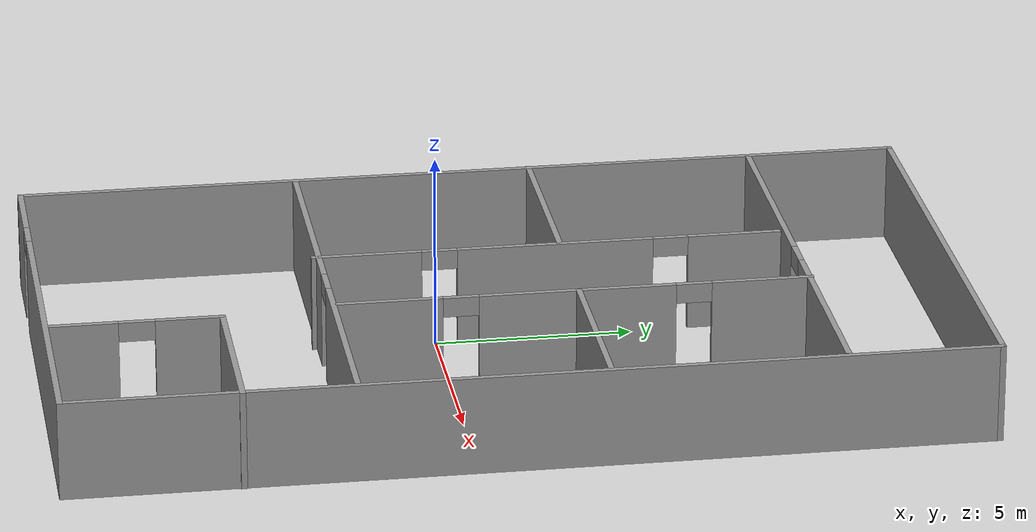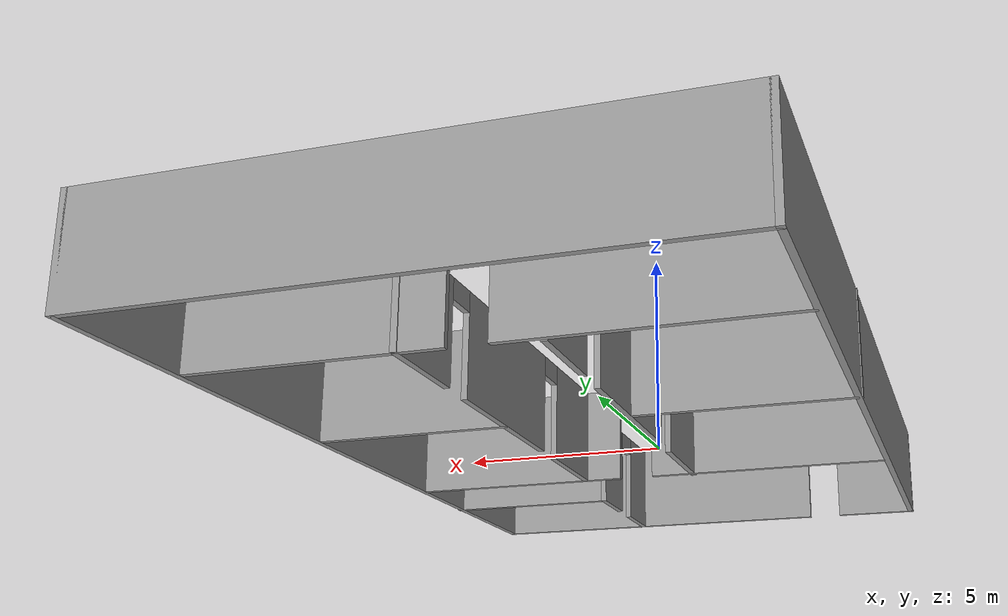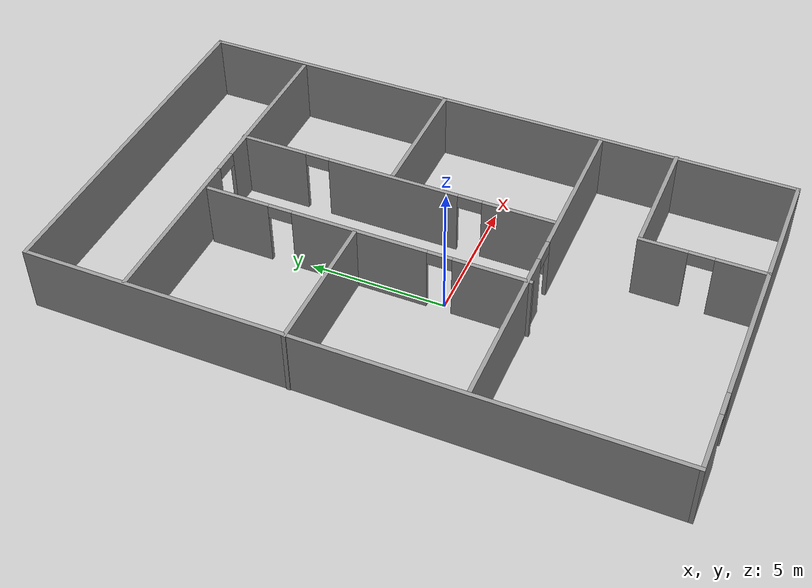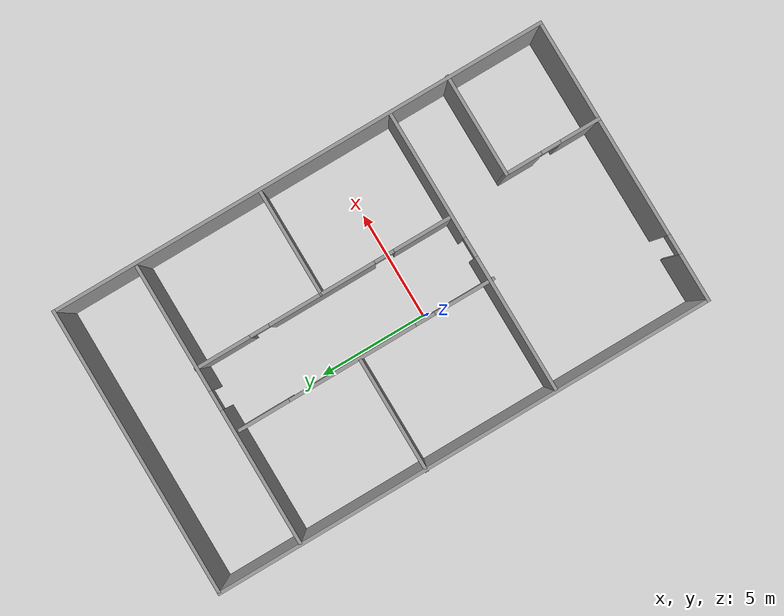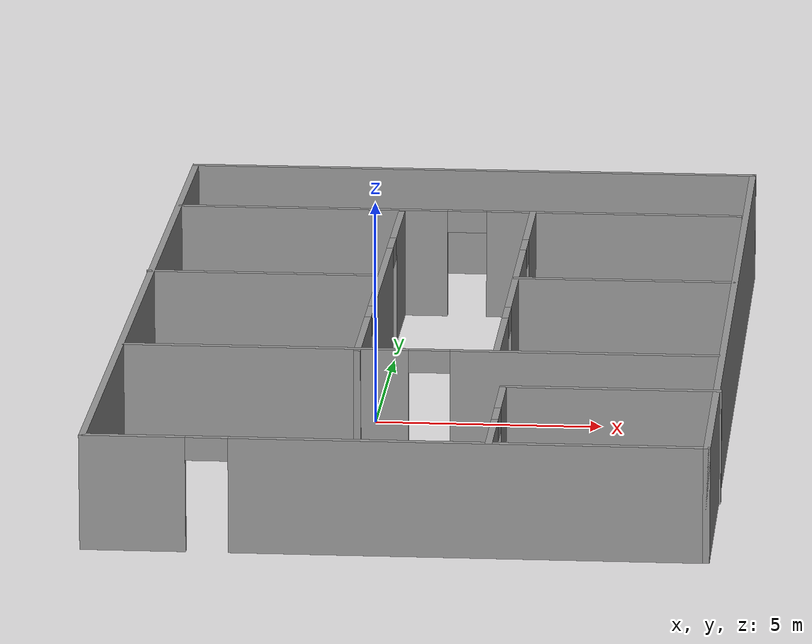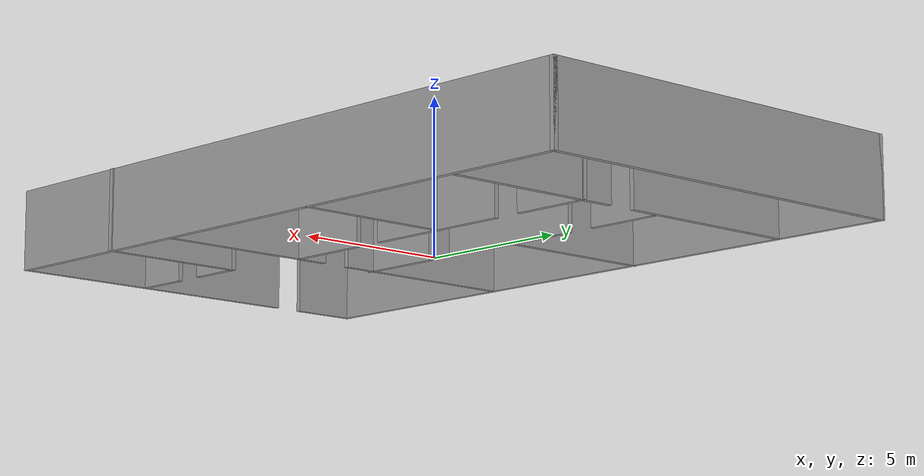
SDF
<?xml version='1.0'?>
<sdf version='1.7'>
  <model name='planning_house'>
    <pose>1.23002 1.36926 0 0 -0 0</pose>
    <link name='Wall_11'>
      <collision name='Wall_11_Collision'>
        <geometry>
          <box>
            <size>23 0.15 2.5</size>
          </box>
        </geometry>
        <pose>0 0 1.25 0 -0 0</pose>
      </collision>
      <visual name='Wall_11_Visual'>
        <pose>0 0 1.25 0 -0 0</pose>
        <geometry>
          <box>
            <size>23 0.15 2.5</size>
          </box>
        </geometry>
        <material>
          <script>
            <uri>file://media/materials/scripts/gazebo.material</uri>
            <name>Gazebo/Grey</name>
          </script>
          <ambient>1 1 1 1</ambient>
        </material>
        <meta>
          <layer>0</layer>
        </meta>
      </visual>
      <pose>-6.55488 -0 0 0 -0 1.5708</pose>
    </link>
    <link name='Wall_12'>
      <collision name='Wall_12_Collision'>
        <geometry>
          <box>
            <size>13.25 0.15 2.5</size>
          </box>
        </geometry>
        <pose>0 0 1.25 0 -0 0</pose>
      </collision>
      <visual name='Wall_12_Visual'>
        <pose>0 0 1.25 0 -0 0</pose>
        <geometry>
          <box>
            <size>13.25 0.15 2.5</size>
          </box>
        </geometry>
        <material>
          <script>
            <uri>file://media/materials/scripts/gazebo.material</uri>
            <name>Gazebo/Grey</name>
          </script>
          <ambient>1 1 1 1</ambient>
        </material>
        <meta>
          <layer>0</layer>
        </meta>
      </visual>
      <pose>-0.004875 11.425 0 0 -0 0</pose>
    </link>
    <link name='Wall_14'>
      <pose>-0.012533 -4.30199 0 0 -0 0</pose>
      <visual name='Wall_14_Visual_0'>
        <pose>-3.37602 0 1.25 0 -0 0</pose>
        <geometry>
          <box>
            <size>6.24796 0.15 2.5</size>
          </box>
        </geometry>
        <material>
          <script>
            <uri>file://media/materials/scripts/gazebo.material</uri>
            <name>Gazebo/Grey</name>
          </script>
          <ambient>1 1 1 1</ambient>
        </material>
        <meta>
          <layer>0</layer>
        </meta>
      </visual>
      <collision name='Wall_14_Collision_0'>
        <geometry>
          <box>
            <size>6.24796 0.15 2.5</size>
          </box>
        </geometry>
        <pose>-3.37602 0 1.25 0 -0 0</pose>
      </collision>
      <visual name='Wall_14_Visual_1'>
        <pose>3.57398 0 1.25 0 -0 0</pose>
        <geometry>
          <box>
            <size>5.85204 0.15 2.5</size>
          </box>
        </geometry>
        <material>
          <script>
            <uri>file://media/materials/scripts/gazebo.material</uri>
            <name>Gazebo/Grey</name>
          </script>
          <ambient>1 1 1 1</ambient>
        </material>
        <meta>
          <layer>0</layer>
        </meta>
      </visual>
      <collision name='Wall_14_Collision_1'>
        <geometry>
          <box>
            <size>5.85204 0.15 2.5</size>
          </box>
        </geometry>
        <pose>3.57398 0 1.25 0 -0 0</pose>
      </collision>
      <visual name='Wall_14_Visual_2'>
        <pose>0.197958 0 2.25 0 -0 0</pose>
        <geometry>
          <box>
            <size>0.9 0.15 0.5</size>
          </box>
        </geometry>
        <material>
          <script>
            <uri>file://media/materials/scripts/gazebo.material</uri>
            <name>Gazebo/Grey</name>
          </script>
          <ambient>1 1 1 1</ambient>
        </material>
        <meta>
          <layer>0</layer>
        </meta>
      </visual>
      <collision name='Wall_14_Collision_2'>
        <geometry>
          <box>
            <size>0.9 0.15 0.5</size>
          </box>
        </geometry>
        <pose>0.197958 0 2.25 0 -0 0</pose>
      </collision>
    </link>
    <link name='Wall_17'>
      <pose>1.98264 -9.24908 0 0 -0 1.5708</pose>
      <visual name='Wall_17_Visual_0'>
        <pose>-1.31875 0 1.25 0 -0 0</pose>
        <geometry>
          <box>
            <size>1.8625 0.15 2.5</size>
          </box>
        </geometry>
        <material>
          <script>
            <uri>file://media/materials/scripts/gazebo.material</uri>
            <name>Gazebo/Grey</name>
          </script>
          <ambient>1 1 1 1</ambient>
        </material>
        <meta>
          <layer>0</layer>
        </meta>
      </visual>
      <collision name='Wall_17_Collision_0'>
        <geometry>
          <box>
            <size>1.8625 0.15 2.5</size>
          </box>
        </geometry>
        <pose>-1.31875 0 1.25 0 -0 0</pose>
      </collision>
      <visual name='Wall_17_Visual_1'>
        <pose>1.38125 0 1.25 0 -0 0</pose>
        <geometry>
          <box>
            <size>1.7375 0.15 2.5</size>
          </box>
        </geometry>
        <material>
          <script>
            <uri>file://media/materials/scripts/gazebo.material</uri>
            <name>Gazebo/Grey</name>
          </script>
          <ambient>1 1 1 1</ambient>
        </material>
        <meta>
          <layer>0</layer>
        </meta>
      </visual>
      <collision name='Wall_17_Collision_1'>
        <geometry>
          <box>
            <size>1.7375 0.15 2.5</size>
          </box>
        </geometry>
        <pose>1.38125 0 1.25 0 -0 0</pose>
      </collision>
      <visual name='Wall_17_Visual_2'>
        <pose>0.062501 0 2.25 0 -0 0</pose>
        <geometry>
          <box>
            <size>0.9 0.15 0.5</size>
          </box>
        </geometry>
        <material>
          <script>
            <uri>file://media/materials/scripts/gazebo.material</uri>
            <name>Gazebo/Grey</name>
          </script>
          <ambient>1 1 1 1</ambient>
        </material>
        <meta>
          <layer>0</layer>
        </meta>
      </visual>
      <collision name='Wall_17_Collision_2'>
        <geometry>
          <box>
            <size>0.9 0.15 0.5</size>
          </box>
        </geometry>
        <pose>0.062501 0 2.25 0 -0 0</pose>
      </collision>
    </link>
    <link name='Wall_18'>
      <collision name='Wall_18_Collision'>
        <geometry>
          <box>
            <size>4.75 0.15 2.5</size>
          </box>
        </geometry>
        <pose>0 0 1.25 0 -0 0</pose>
      </collision>
      <visual name='Wall_18_Visual'>
        <pose>0 0 1.25 0 -0 0</pose>
        <geometry>
          <box>
            <size>4.75 0.15 2.5</size>
          </box>
        </geometry>
        <material>
          <script>
            <uri>file://media/materials/scripts/gazebo.material</uri>
            <name>Gazebo/Grey</name>
          </script>
          <ambient>1 1 1 1</ambient>
        </material>
        <meta>
          <layer>0</layer>
        </meta>
      </visual>
      <pose>4.28264 -7.07409 0 0 -0 0</pose>
    </link>
    <link name='Wall_20'>
      <pose>-0.05346 7.64505 0 0 -0 0</pose>
      <visual name='Wall_20_Visual_0'>
        <pose>-3.38632 0 1.25 0 -0 0</pose>
        <geometry>
          <box>
            <size>6.22736 0.15 2.5</size>
          </box>
        </geometry>
        <material>
          <script>
            <uri>file://media/materials/scripts/gazebo.material</uri>
            <name>Gazebo/Grey</name>
          </script>
          <ambient>1 1 1 1</ambient>
        </material>
        <meta>
          <layer>0</layer>
        </meta>
      </visual>
      <collision name='Wall_20_Collision_0'>
        <geometry>
          <box>
            <size>6.22736 0.15 2.5</size>
          </box>
        </geometry>
        <pose>-3.38632 0 1.25 0 -0 0</pose>
      </collision>
      <visual name='Wall_20_Visual_1'>
        <pose>3.56368 0 1.25 0 -0 0</pose>
        <geometry>
          <box>
            <size>5.87264 0.15 2.5</size>
          </box>
        </geometry>
        <material>
          <script>
            <uri>file://media/materials/scripts/gazebo.material</uri>
            <name>Gazebo/Grey</name>
          </script>
          <ambient>1 1 1 1</ambient>
        </material>
        <meta>
          <layer>0</layer>
        </meta>
      </visual>
      <collision name='Wall_20_Collision_1'>
        <geometry>
          <box>
            <size>5.87264 0.15 2.5</size>
          </box>
        </geometry>
        <pose>3.56368 0 1.25 0 -0 0</pose>
      </collision>
      <visual name='Wall_20_Visual_2'>
        <pose>0.177357 0 2.25 0 -0 0</pose>
        <geometry>
          <box>
            <size>0.9 0.15 0.5</size>
          </box>
        </geometry>
        <material>
          <script>
            <uri>file://media/materials/scripts/gazebo.material</uri>
            <name>Gazebo/Grey</name>
          </script>
          <ambient>1 1 1 1</ambient>
        </material>
        <meta>
          <layer>0</layer>
        </meta>
      </visual>
      <collision name='Wall_20_Collision_2'>
        <geometry>
          <box>
            <size>0.9 0.15 0.5</size>
          </box>
        </geometry>
        <pose>0.177357 0 2.25 0 -0 0</pose>
      </collision>
    </link>
    <link name='Wall_22'>
      <pose>-1.37746 1.50054 0 0 -0 -1.5708</pose>
      <visual name='Wall_22_Visual_0'>
        <pose>-4.80332 0 1.25 0 -0 0</pose>
        <geometry>
          <box>
            <size>2.39335 0.15 2.5</size>
          </box>
        </geometry>
        <material>
          <script>
            <uri>file://media/materials/scripts/gazebo.material</uri>
            <name>Gazebo/Grey</name>
          </script>
          <ambient>1 1 1 1</ambient>
        </material>
        <meta>
          <layer>0</layer>
        </meta>
      </visual>
      <collision name='Wall_22_Collision_0'>
        <geometry>
          <box>
            <size>2.39335 0.15 2.5</size>
          </box>
        </geometry>
        <pose>-4.80332 0 1.25 0 -0 0</pose>
      </collision>
      <visual name='Wall_22_Visual_1'>
        <pose>-0.20331 0 1.25 0 -0 0</pose>
        <geometry>
          <box>
            <size>5.00668 0.15 2.5</size>
          </box>
        </geometry>
        <material>
          <script>
            <uri>file://media/materials/scripts/gazebo.material</uri>
            <name>Gazebo/Grey</name>
          </script>
          <ambient>1 1 1 1</ambient>
        </material>
        <meta>
          <layer>0</layer>
        </meta>
      </visual>
      <collision name='Wall_22_Collision_1'>
        <geometry>
          <box>
            <size>5.00668 0.15 2.5</size>
          </box>
        </geometry>
        <pose>-0.20331 0 1.25 0 -0 0</pose>
      </collision>
      <visual name='Wall_22_Visual_2'>
        <pose>4.60001 0 1.25 0 -0 0</pose>
        <geometry>
          <box>
            <size>2.79997 0.15 2.5</size>
          </box>
        </geometry>
        <material>
          <script>
            <uri>file://media/materials/scripts/gazebo.material</uri>
            <name>Gazebo/Grey</name>
          </script>
          <ambient>1 1 1 1</ambient>
        </material>
        <meta>
          <layer>0</layer>
        </meta>
      </visual>
      <collision name='Wall_22_Collision_2'>
        <geometry>
          <box>
            <size>2.79997 0.15 2.5</size>
          </box>
        </geometry>
        <pose>4.60001 0 1.25 0 -0 0</pose>
      </collision>
      <visual name='Wall_22_Visual_3'>
        <pose>-3.15665 0 2.25 0 -0 0</pose>
        <geometry>
          <box>
            <size>0.9 0.15 0.5</size>
          </box>
        </geometry>
        <material>
          <script>
            <uri>file://media/materials/scripts/gazebo.material</uri>
            <name>Gazebo/Grey</name>
          </script>
          <ambient>1 1 1 1</ambient>
        </material>
        <meta>
          <layer>0</layer>
        </meta>
      </visual>
      <collision name='Wall_22_Collision_3'>
        <geometry>
          <box>
            <size>0.9 0.15 0.5</size>
          </box>
        </geometry>
        <pose>-3.15665 0 2.25 0 -0 0</pose>
      </collision>
      <visual name='Wall_22_Visual_4'>
        <pose>2.75003 0 2.25 0 -0 0</pose>
        <geometry>
          <box>
            <size>0.9 0.15 0.5</size>
          </box>
        </geometry>
        <material>
          <script>
            <uri>file://media/materials/scripts/gazebo.material</uri>
            <name>Gazebo/Grey</name>
          </script>
          <ambient>1 1 1 1</ambient>
        </material>
        <meta>
          <layer>0</layer>
        </meta>
      </visual>
      <collision name='Wall_22_Collision_4'>
        <geometry>
          <box>
            <size>0.9 0.15 0.5</size>
          </box>
        </geometry>
        <pose>2.75003 0 2.25 0 -0 0</pose>
      </collision>
    </link>
    <link name='Wall_24'>
      <pose>1.64125 1.74823 0 0 -0 1.5708</pose>
      <visual name='Wall_24_Visual_0'>
        <pose>-4.66233 0 1.25 0 -0 0</pose>
        <geometry>
          <box>
            <size>2.67534 0.15 2.5</size>
          </box>
        </geometry>
        <material>
          <script>
            <uri>file://media/materials/scripts/gazebo.material</uri>
            <name>Gazebo/Grey</name>
          </script>
          <ambient>1 1 1 1</ambient>
        </material>
        <meta>
          <layer>0</layer>
        </meta>
      </visual>
      <collision name='Wall_24_Collision_0'>
        <geometry>
          <box>
            <size>2.67534 0.15 2.5</size>
          </box>
        </geometry>
        <pose>-4.66233 0 1.25 0 -0 0</pose>
      </collision>
      <visual name='Wall_24_Visual_1'>
        <pose>0.04791 0 1.25 0 -0 0</pose>
        <geometry>
          <box>
            <size>4.94515 0.15 2.5</size>
          </box>
        </geometry>
        <material>
          <script>
            <uri>file://media/materials/scripts/gazebo.material</uri>
            <name>Gazebo/Grey</name>
          </script>
          <ambient>1 1 1 1</ambient>
        </material>
        <meta>
          <layer>0</layer>
        </meta>
      </visual>
      <collision name='Wall_24_Collision_1'>
        <geometry>
          <box>
            <size>4.94515 0.15 2.5</size>
          </box>
        </geometry>
        <pose>0.04791 0 1.25 0 -0 0</pose>
      </collision>
      <visual name='Wall_24_Visual_2'>
        <pose>4.71024 0 1.25 0 -0 0</pose>
        <geometry>
          <box>
            <size>2.57952 0.15 2.5</size>
          </box>
        </geometry>
        <material>
          <script>
            <uri>file://media/materials/scripts/gazebo.material</uri>
            <name>Gazebo/Grey</name>
          </script>
          <ambient>1 1 1 1</ambient>
        </material>
        <meta>
          <layer>0</layer>
        </meta>
      </visual>
      <collision name='Wall_24_Collision_2'>
        <geometry>
          <box>
            <size>2.57952 0.15 2.5</size>
          </box>
        </geometry>
        <pose>4.71024 0 1.25 0 -0 0</pose>
      </collision>
      <visual name='Wall_24_Visual_3'>
        <pose>-2.87466 0 2.25 0 -0 0</pose>
        <geometry>
          <box>
            <size>0.9 0.15 0.5</size>
          </box>
        </geometry>
        <material>
          <script>
            <uri>file://media/materials/scripts/gazebo.material</uri>
            <name>Gazebo/Grey</name>
          </script>
          <ambient>1 1 1 1</ambient>
        </material>
        <meta>
          <layer>0</layer>
        </meta>
      </visual>
      <collision name='Wall_24_Collision_3'>
        <geometry>
          <box>
            <size>0.9 0.15 0.5</size>
          </box>
        </geometry>
        <pose>-2.87466 0 2.25 0 -0 0</pose>
      </collision>
      <visual name='Wall_24_Visual_4'>
        <pose>2.97048 0 2.25 0 -0 0</pose>
        <geometry>
          <box>
            <size>0.9 0.15 0.5</size>
          </box>
        </geometry>
        <material>
          <script>
            <uri>file://media/materials/scripts/gazebo.material</uri>
            <name>Gazebo/Grey</name>
          </script>
          <ambient>1 1 1 1</ambient>
        </material>
        <meta>
          <layer>0</layer>
        </meta>
      </visual>
      <collision name='Wall_24_Collision_4'>
        <geometry>
          <box>
            <size>0.9 0.15 0.5</size>
          </box>
        </geometry>
        <pose>2.97048 0 2.25 0 -0 0</pose>
      </collision>
    </link>
    <link name='Wall_27'>
      <collision name='Wall_27_Collision'>
        <geometry>
          <box>
            <size>5.25 0.15 2.5</size>
          </box>
        </geometry>
        <pose>0 0 1.25 0 -0 0</pose>
      </collision>
      <visual name='Wall_27_Visual'>
        <pose>0 0 1.25 0 -0 0</pose>
        <geometry>
          <box>
            <size>5.25 0.15 2.5</size>
          </box>
        </geometry>
        <material>
          <script>
            <uri>file://media/materials/scripts/gazebo.material</uri>
            <name>Gazebo/Grey</name>
          </script>
          <ambient>1 1 1 1</ambient>
        </material>
        <meta>
          <layer>0</layer>
        </meta>
      </visual>
      <pose>-4.03264 1.82691 0 0 -0 0</pose>
    </link>
    <link name='Wall_29'>
      <collision name='Wall_29_Collision'>
        <geometry>
          <box>
            <size>5 0.15 2.5</size>
          </box>
        </geometry>
        <pose>0 0 1.25 0 -0 0</pose>
      </collision>
      <visual name='Wall_29_Visual'>
        <pose>0 0 1.25 0 -0 0</pose>
        <geometry>
          <box>
            <size>5 0.15 2.5</size>
          </box>
        </geometry>
        <material>
          <script>
            <uri>file://media/materials/scripts/gazebo.material</uri>
            <name>Gazebo/Grey</name>
          </script>
          <ambient>1 1 1 1</ambient>
        </material>
        <meta>
          <layer>0</layer>
        </meta>
      </visual>
      <pose>4.08709 1.82691 0 0 -0 0</pose>
    </link>
    <link name='Wall_7'>
      <pose>-0.004875 -11.425 0 0 -0 0</pose>
      <visual name='Wall_7_Visual_0'>
        <pose>-5.50353 0 1.25 0 -0 0</pose>
        <geometry>
          <box>
            <size>2.24293 0.15 2.5</size>
          </box>
        </geometry>
        <material>
          <script>
            <uri>file://media/materials/scripts/gazebo.material</uri>
            <name>Gazebo/Grey</name>
          </script>
          <ambient>1 1 1 1</ambient>
        </material>
        <meta>
          <layer>0</layer>
        </meta>
      </visual>
      <collision name='Wall_7_Collision_0'>
        <geometry>
          <box>
            <size>2.24293 0.15 2.5</size>
          </box>
        </geometry>
        <pose>-5.50353 0 1.25 0 -0 0</pose>
      </collision>
      <visual name='Wall_7_Visual_1'>
        <pose>1.57147 0 1.25 0 -0 0</pose>
        <geometry>
          <box>
            <size>10.1071 0.15 2.5</size>
          </box>
        </geometry>
        <material>
          <script>
            <uri>file://media/materials/scripts/gazebo.material</uri>
            <name>Gazebo/Grey</name>
          </script>
          <ambient>1 1 1 1</ambient>
        </material>
        <meta>
          <layer>0</layer>
        </meta>
      </visual>
      <collision name='Wall_7_Collision_1'>
        <geometry>
          <box>
            <size>10.1071 0.15 2.5</size>
          </box>
        </geometry>
        <pose>1.57147 0 1.25 0 -0 0</pose>
      </collision>
      <visual name='Wall_7_Visual_2'>
        <pose>-3.93207 0 2.25 0 -0 0</pose>
        <geometry>
          <box>
            <size>0.9 0.15 0.5</size>
          </box>
        </geometry>
        <material>
          <script>
            <uri>file://media/materials/scripts/gazebo.material</uri>
            <name>Gazebo/Grey</name>
          </script>
          <ambient>1 1 1 1</ambient>
        </material>
        <meta>
          <layer>0</layer>
        </meta>
      </visual>
      <collision name='Wall_7_Collision_2'>
        <geometry>
          <box>
            <size>0.9 0.15 0.5</size>
          </box>
        </geometry>
        <pose>-3.93207 0 2.25 0 -0 0</pose>
      </collision>
    </link>
    <link name='Wall_8'>
      <collision name='Wall_8_Collision'>
        <geometry>
          <box>
            <size>23 0.15 2.5</size>
          </box>
        </geometry>
        <pose>0 0 1.25 0 -0 0</pose>
      </collision>
      <visual name='Wall_8_Visual'>
        <pose>0 0 1.25 0 -0 0</pose>
        <geometry>
          <box>
            <size>23 0.15 2.5</size>
          </box>
        </geometry>
        <material>
          <script>
            <uri>file://media/materials/scripts/gazebo.material</uri>
            <name>Gazebo/Grey</name>
          </script>
          <ambient>1 1 1 1</ambient>
        </material>
        <meta>
          <layer>0</layer>
        </meta>
      </visual>
      <pose>6.54512 -0 0 0 -0 1.5708</pose>
    </link>
    <static>1</static>
  </model>
</sdf>
